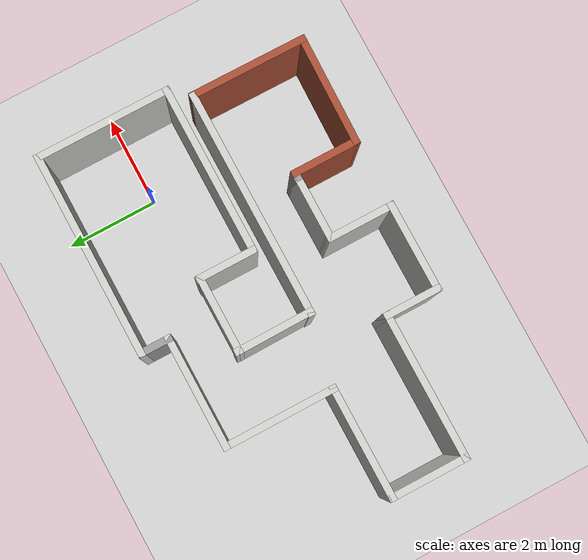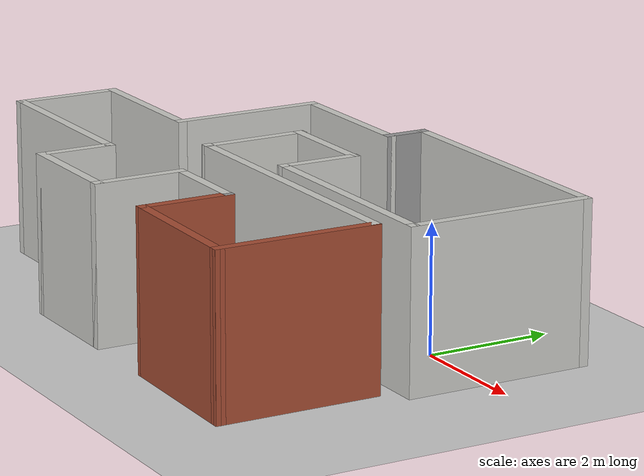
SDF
<sdf version="1.6">
 <world name="default">
  <light name="sun" type="directional">
   <pose>0 0 10 0 -0 0</pose>
   <diffuse>0.8 0.8 0.8 1</diffuse>
   <specular>0.1 0.1 0.1 1</specular>
   <attenuation>
    <range>1000</range>
    <constant>0.9</constant>
    <linear>0.01</linear>
    <quadratic>0.001</quadratic>
   </attenuation>
   <direction>-0.5 0.5 -1</direction>
  </light>
  <model name="ground_plane">
   <static>1</static>
   <link name="link">
    <collision name="collision">
     <geometry><plane><normal>0 0 1</normal><size>100 100</size></plane></geometry>
     <surface><friction><ode><mu>100</mu><mu2>50</mu2></ode></friction></surface>
    </collision>
    <visual name="visual">
     <cast_shadows>0</cast_shadows>
     <geometry><plane><normal>0 0 1</normal><size>100 100</size></plane></geometry>
     <material>
      <script><uri>file://media/materials/scripts/gazebo.material</uri><name>Gazebo/Grey</name></script>
     </material>
    </visual>
   </link>
  </model>
  <gravity>0 0 -9.8</gravity>
  <magnetic_field>6e-06 2.3e-05 -4.2e-05</magnetic_field>
  <atmosphere type="adiabatic"/>
  <physics name="default_physics" default="0" type="ode">
   <max_step_size>0.001</max_step_size>
   <real_time_factor>1</real_time_factor>
   <real_time_update_rate>1000</real_time_update_rate>
  </physics>
  <scene><ambient>0.4 0.4 0.4 1</ambient><background>0.7 0.7 0.7 1</background><shadows>1</shadows></scene>
  <spherical_coordinates>
   <surface_model>EARTH_WGS84</surface_model>
   <latitude_deg>0</latitude_deg>
   <longitude_deg>0</longitude_deg>
   <elevation>0</elevation>
   <heading_deg>0</heading_deg>
  </spherical_coordinates>
  <model name="little_maze">
   <pose>-3.085 -1.21081 0 0 -0 0</pose>
   <link name="Wall_0">
    <collision name="Wall_0_Collision">
     <geometry><box><size>2.45054 0.15 2.5</size></box></geometry>
     <pose>0 0 1.25 0 -0 0</pose>
    </collision>
    <visual name="Wall_0_Visual">
     <pose>0 0 1.25 0 -0 0</pose>
     <geometry><box><size>2.45054 0.15 2.5</size></box></geometry>
     <material>
      <script><uri>file://media/materials/scripts/gazebo.material</uri><name>Gazebo/Bricks</name></script>
      <ambient>1 1 1 1</ambient>
     </material>
    </visual>
    <pose>3.025 -2.82419 0 0 0 -0.021736</pose>
   </link>
   <link name="Wall_1">
    <collision name="Wall_1_Collision">
     <geometry><box><size>2.58751 0.15 2.5</size></box></geometry>
     <pose>0 0 1.25 0 -0 0</pose>
    </collision>
    <visual name="Wall_1_Visual">
     <pose>0 0 1.25 0 -0 0</pose>
     <geometry><box><size>2.58751 0.15 2.5</size></box></geometry>
     <material>
      <script><uri>file://media/materials/scripts/gazebo.material</uri><name>Gazebo/Bricks</name></script>
      <ambient>1 1 1 1</ambient>
     </material>
    </visual>
    <pose>4.18375 -1.63047 0 0 -0 1.56362</pose>
   </link>
   <link name="Wall_10">
    <collision name="Wall_10_Collision">
     <geometry><box><size>0.75 0.15 2.5</size></box></geometry>
     <pose>0 0 1.25 0 -0 0</pose>
    </collision>
    <visual name="Wall_10_Visual">
     <pose>0 0 1.25 0 -0 0</pose>
     <geometry><box><size>0.75 0.15 2.5</size></box></geometry>
     <material>
      <script><uri>file://media/materials/scripts/gazebo.material</uri><name>Gazebo/Grey</name></script>
      <ambient>1 1 1 1</ambient>
     </material>
    </visual>
    <pose>0.175 2.55081 0 0 0 -1.5708</pose>
   </link>
   <link name="Wall_11">
    <collision name="Wall_11_Collision">
     <geometry><box><size>2.5 0.15 2.5</size></box></geometry>
     <pose>0 0 1.25 0 -0 0</pose>
    </collision>
    <visual name="Wall_11_Visual">
     <pose>0 0 1.25 0 -0 0</pose>
     <geometry><box><size>2.5 0.15 2.5</size></box></geometry>
     <material>
      <script><uri>file://media/materials/scripts/gazebo.material</uri><name>Gazebo/CeilingTiled</name></script>
      <ambient>1 1 1 1</ambient>
     </material>
    </visual>
    <pose>-1 2.25081 0 0 -0 3.14159</pose>
   </link>
   <link name="Wall_12">
    <collision name="Wall_12_Collision">
     <geometry><box><size>2.5 0.15 2.5</size></box></geometry>
     <pose>0 0 1.25 0 -0 0</pose>
    </collision>
    <visual name="Wall_12_Visual">
     <pose>0 0 1.25 0 -0 0</pose>
     <geometry><box><size>2.5 0.15 2.5</size></box></geometry>
     <material>
      <script><uri>file://media/materials/scripts/gazebo.material</uri><name>Gazebo/CeilingTiled</name></script>
      <ambient>1 1 1 1</ambient>
     </material>
    </visual>
    <pose>-2.175 1.07581 0 0 0 -1.5708</pose>
   </link>
   <link name="Wall_14">
    <collision name="Wall_14_Collision">
     <geometry><box><size>2.5 0.15 2.5</size></box></geometry>
     <pose>0 0 1.25 0 -0 0</pose>
    </collision>
    <visual name="Wall_14_Visual">
     <pose>0 0 1.25 0 -0 0</pose>
     <geometry><box><size>2.5 0.15 2.5</size></box></geometry>
     <material>
      <script><uri>file://media/materials/scripts/gazebo.material</uri><name>Gazebo/CeilingTiled</name></script>
      <ambient>1 1 1 1</ambient>
     </material>
    </visual>
    <pose>-3.35 -0.099194 0 0 -0 3.14159</pose>
   </link>
   <link name="Wall_15">
    <collision name="Wall_15_Collision">
     <geometry><box><size>1.75 0.15 2.5</size></box></geometry>
     <pose>0 0 1.25 0 -0 0</pose>
    </collision>
    <visual name="Wall_15_Visual">
     <pose>0 0 1.25 0 -0 0</pose>
     <geometry><box><size>1.75 0.15 2.5</size></box></geometry>
     <material>
      <script><uri>file://media/materials/scripts/gazebo.material</uri><name>Gazebo/CeilingTiled</name></script>
      <ambient>1 1 1 1</ambient>
     </material>
    </visual>
    <pose>-4.525 -0.899194 0 0 0 -1.5708</pose>
   </link>
   <link name="Wall_16">
    <collision name="Wall_16_Collision">
     <geometry><box><size>3.25 0.15 2.5</size></box></geometry>
     <pose>0 0 1.25 0 -0 0</pose>
    </collision>
    <visual name="Wall_16_Visual">
     <pose>0 0 1.25 0 -0 0</pose>
     <geometry><box><size>3.25 0.15 2.5</size></box></geometry>
     <material>
      <script><uri>file://media/materials/scripts/gazebo.material</uri><name>Gazebo/CeilingTiled</name></script>
      <ambient>1 1 1 1</ambient>
     </material>
    </visual>
    <pose>-2.975 -1.69919 0 0 -0 0</pose>
   </link>
   <link name="Wall_17">
    <collision name="Wall_17_Collision">
     <geometry><box><size>1.25 0.15 2.5</size></box></geometry>
     <pose>0 0 1.25 0 -0 0</pose>
    </collision>
    <visual name="Wall_17_Visual">
     <pose>0 0 1.25 0 -0 0</pose>
     <geometry><box><size>1.25 0.15 2.5</size></box></geometry>
     <material>
      <script><uri>file://media/materials/scripts/gazebo.material</uri><name>Gazebo/CeilingTiled</name></script>
      <ambient>1 1 1 1</ambient>
     </material>
    </visual>
    <pose>-1.425 -2.24919 0 0 0 -1.5708</pose>
   </link>
   <link name="Wall_18">
    <collision name="Wall_18_Collision">
     <geometry><box><size>2 0.15 2.5</size></box></geometry>
     <pose>0 0 1.25 0 -0 0</pose>
    </collision>
    <visual name="Wall_18_Visual">
     <pose>0 0 1.25 0 -0 0</pose>
     <geometry><box><size>2 0.15 2.5</size></box></geometry>
     <material>
      <script><uri>file://media/materials/scripts/gazebo.material</uri><name>Gazebo/CeilingTiled</name></script>
      <ambient>1 1 1 1</ambient>
     </material>
    </visual>
    <pose>-0.5 -2.79919 0 0 -0 0</pose>
   </link>
   <link name="Wall_19">
    <collision name="Wall_19_Collision">
     <geometry><box><size>1.5 0.15 2.5</size></box></geometry>
     <pose>0 0 1.25 0 -0 0</pose>
    </collision>
    <visual name="Wall_19_Visual">
     <pose>0 0 1.25 0 -0 0</pose>
     <geometry><box><size>1.5 0.15 2.5</size></box></geometry>
     <material>
      <script><uri>file://media/materials/scripts/gazebo.material</uri><name>Gazebo/CeilingTiled</name></script>
      <ambient>1 1 1 1</ambient>
     </material>
    </visual>
    <pose>0.425 -2.12419 0 0 -0 1.5708</pose>
   </link>
   <link name="Wall_2">
    <collision name="Wall_2_Collision">
     <geometry><box><size>5 0.15 2.5</size></box></geometry>
     <pose>0 0 1.25 0 -0 0</pose>
    </collision>
    <visual name="Wall_2_Visual">
     <pose>0 0 1.25 0 -0 0</pose>
     <geometry><box><size>5 0.15 2.5</size></box></geometry>
     <material>
      <script><uri>file://media/materials/scripts/gazebo.material</uri><name>Gazebo/CeilingTiled</name></script>
      <ambient>1 1 1 1</ambient>
     </material>
    </visual>
    <pose>1.75 -0.411744 0 0 -0 3.14159</pose>
   </link>
   <link name="Wall_20">
    <collision name="Wall_20_Collision">
     <geometry><box><size>1.5 0.15 2.5</size></box></geometry>
     <pose>0 0 1.25 0 -0 0</pose>
    </collision>
    <visual name="Wall_20_Visual">
     <pose>0 0 1.25 0 -0 0</pose>
     <geometry><box><size>1.5 0.15 2.5</size></box></geometry>
     <material>
      <script><uri>file://media/materials/scripts/gazebo.material</uri><name>Gazebo/CeilingTiled</name></script>
      <ambient>1 1 1 1</ambient>
     </material>
    </visual>
    <pose>1.1 -1.44919 0 0 -0 0</pose>
   </link>
   <link name="Wall_21">
    <collision name="Wall_21_Collision">
     <geometry><box><size>0.25 0.15 2.5</size></box></geometry>
     <pose>0 0 1.25 0 -0 0</pose>
    </collision>
    <visual name="Wall_21_Visual">
     <pose>0 0 1.25 0 -0 0</pose>
     <geometry><box><size>0.25 0.15 2.5</size></box></geometry>
     <material>
      <script><uri>file://media/materials/scripts/gazebo.material</uri><name>Gazebo/Grey</name></script>
      <ambient>1 1 1 1</ambient>
     </material>
    </visual>
    <pose>1.825 -1.44919 0 0 -0 0</pose>
   </link>
   <link name="Wall_22">
    <collision name="Wall_22_Collision">
     <geometry><box><size>1.5 0.15 2.5</size></box></geometry>
     <pose>0 0 1.25 0 -0 0</pose>
    </collision>
    <visual name="Wall_22_Visual">
     <pose>0 0 1.25 0 -0 0</pose>
     <geometry><box><size>1.5 0.15 2.5</size></box></geometry>
     <material>
      <script><uri>file://media/materials/scripts/gazebo.material</uri><name>Gazebo/Bricks</name></script>
      <ambient>1 1 1 1</ambient>
     </material>
    </visual>
    <pose>1.875 -2.12419 0 0 0 -1.5708</pose>
   </link>
   <link name="Wall_3">
    <collision name="Wall_3_Collision">
     <geometry><box><size>1.74496 0.15 2.5</size></box></geometry>
     <pose>0 0 1.25 0 -0 0</pose>
    </collision>
    <visual name="Wall_3_Visual">
     <pose>0 0 1.25 0 -0 0</pose>
     <geometry><box><size>1.74496 0.15 2.5</size></box></geometry>
     <material>
      <script><uri>file://media/materials/scripts/gazebo.material</uri><name>Gazebo/CeilingTiled</name></script>
      <ambient>1 1 1 1</ambient>
     </material>
    </visual>
    <pose>-0.666255 0.385687 0 0 -0 1.58176</pose>
   </link>
   <link name="Wall_4">
    <collision name="Wall_4_Collision">
     <geometry><box><size>1.75 0.15 2.5</size></box></geometry>
     <pose>0 0 1.25 0 -0 0</pose>
    </collision>
    <visual name="Wall_4_Visual">
     <pose>0 0 1.25 0 -0 0</pose>
     <geometry><box><size>1.75 0.15 2.5</size></box></geometry>
     <material>
      <script><uri>file://media/materials/scripts/gazebo.material</uri><name>Gazebo/CeilingTiled</name></script>
      <ambient>1 1 1 1</ambient>
     </material>
    </visual>
    <pose>0.125 1.16563 0 0 -0 0</pose>
   </link>
   <link name="Wall_5">
    <collision name="Wall_5_Collision">
     <geometry><box><size>1.33231 0.15 2.5</size></box></geometry>
     <pose>0 0 1.25 0 -0 0</pose>
    </collision>
    <visual name="Wall_5_Visual">
     <pose>0 0 1.25 0 -0 0</pose>
     <geometry><box><size>1.33231 0.15 2.5</size></box></geometry>
     <material>
      <script><uri>file://media/materials/scripts/gazebo.material</uri><name>Gazebo/CeilingTiled</name></script>
      <ambient>1 1 1 1</ambient>
     </material>
    </visual>
    <pose>0.925 0.591962 0 0 0 -1.5708</pose>
   </link>
   <link name="Wall_6">
    <collision name="Wall_6_Collision">
     <geometry><box><size>3.75 0.15 2.5</size></box></geometry>
     <pose>0 0 1.25 0 -0 0</pose>
    </collision>
    <visual name="Wall_6_Visual">
     <pose>0 0 1.25 0 -0 0</pose>
     <geometry><box><size>3.75 0.15 2.5</size></box></geometry>
     <material>
      <script><uri>file://media/materials/scripts/gazebo.material</uri><name>Gazebo/CeilingTiled</name></script>
      <ambient>1 1 1 1</ambient>
     </material>
    </visual>
    <pose>2.725 0.000806 0 0 -0 0</pose>
   </link>
   <link name="Wall_7">
    <collision name="Wall_7_Collision">
     <geometry><box><size>3 0.15 2.5</size></box></geometry>
     <pose>0 0 1.25 0 -0 0</pose>
    </collision>
    <visual name="Wall_7_Visual">
     <pose>0 0 1.25 0 -0 0</pose>
     <geometry><box><size>3 0.15 2.5</size></box></geometry>
     <material>
      <script><uri>file://media/materials/scripts/gazebo.material</uri><name>Gazebo/CeilingTiled</name></script>
      <ambient>1 1 1 1</ambient>
     </material>
    </visual>
    <pose>4.525 1.42581 0 0 -0 1.5708</pose>
   </link>
   <link name="Wall_9">
    <collision name="Wall_9_Collision">
     <geometry><box><size>4.5 0.15 2.5</size></box></geometry>
     <pose>0 0 1.25 0 -0 0</pose>
    </collision>
    <visual name="Wall_9_Visual">
     <pose>0 0 1.25 0 -0 0</pose>
     <geometry><box><size>4.5 0.15 2.5</size></box></geometry>
     <material>
      <script><uri>file://media/materials/scripts/gazebo.material</uri><name>Gazebo/CeilingTiled</name></script>
      <ambient>1 1 1 1</ambient>
     </material>
    </visual>
    <pose>2.35 2.85081 0 0 -0 3.14159</pose>
   </link>
   <static>1</static>
  </model>
 </world>
</sdf>
